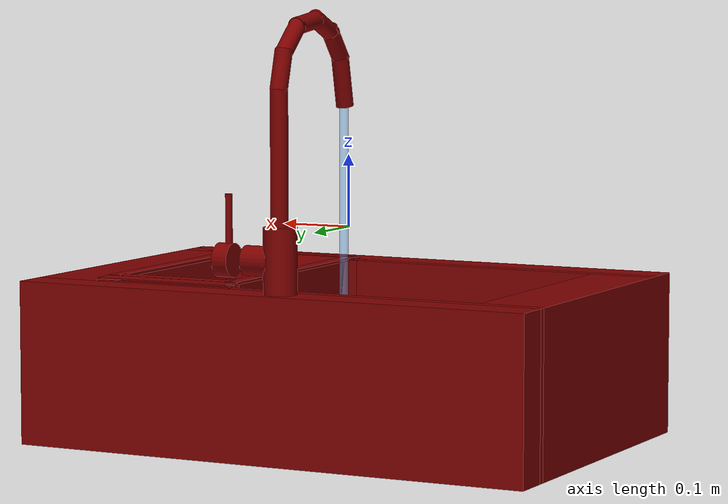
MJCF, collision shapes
<?xml version='1.0' encoding='UTF-8'?>
<mujoco model="model">
  <option timestep="0.002" gravity="0.0 0.0 -9.81"/>
  <compiler angle="radian"/>
  <asset>
    <mesh file="visuals/handle.obj" name="handle_vis"/>
    <mesh file="visuals/Body001.obj" name="Body001_vis"/>
    <mesh file="visuals/Container001.obj" name="Container001_vis"/>
    <mesh file="visuals/spout.obj" name="spout_vis"/>
    <texture file="visuals/T_BC001.png" name="Body001_material" type="2d"/>
    <material name="Body001_material" rgba="1 1 1 1.0" texture="Body001_material" shininess="0.1" specular="0.9"/>
    <texture file="visuals/T_BC001.png" name="handle_material" type="2d"/>
    <material name="handle_material" rgba="1 1 1 1.0" texture="handle_material" shininess="0.1" specular="0.9"/>
    <texture file="visuals/T_BC001.png" name="Container001_material" type="2d"/>
    <material name="Container001_material" rgba="1 1 1 1.0" texture="Container001_material" shininess="0.1" specular="0.9"/>
    <texture file="visuals/T_BC001.png" name="spout_material" type="2d"/>
    <material name="spout_material" rgba="1 1 1 1.0" texture="spout_material" shininess="0.1" specular="0.9"/>
  </asset>
  <default>
    <default class="visual">
      <geom conaffinity="0" contype="0" group="1" type="mesh"/>
    </default>
    <default class="collision">
      <geom group="0" rgba="0.5 0 0 0.5" solimp="0.998 0.998 0.001" solref="0.001 2"/>
    </default>
    <default class="spawn">
      <geom group="0" rgba="1 1 1 0.5" contype="0" conaffinity="0"/>
      <site group="0" rgba="1 1 1 0.5"/>
    </default>
    <default class="region">
      <geom group="1" conaffinity="0" contype="0" rgba="0 1 0 0"/>
    </default>
  </default>
  <worldbody>
    <body>
      <body name="object">
        <geom mesh="Body001_vis" type="mesh" solimp="0.998 0.998 0.001" solref="0.001 1" friction="0.95 0.3 0.1" class="visual" material="Body001_material"/>
        <geom class="collision" type="box" pos="-0.33033314 -0.03073106 -0.18203157" size="0.04538169503211975 0.2187015414237976 0.11276034265756607" quat="1.0 0.0 0.0 0.0"/>
        <geom class="collision" type="box" pos="-0.00000001 -0.22260673 -0.18203154" size="0.375713586807251 0.026827149093151093 0.11276036500930786" quat="1.0 0.0 0.0 0.0"/>
        <geom class="collision" type="box" pos="0.33197743 -0.01938420 -0.18203155" size="0.04373740777373314 0.23004864156246185 0.11276038736104965" quat="1.0 0.0 0.0 0.0"/>
        <geom class="collision" type="box" pos="-0.14741498 0.19010052 -0.18203143" size="0.22829879820346832 0.008557581342756748 0.11276043951511383" quat="1.0 0.0 0.0 0.0"/>
        <geom class="collision" type="box" pos="-0.14692110 -0.19321556 -0.18203152" size="0.22879284620285034 0.008557593449950218 0.1127605140209198" quat="1.0 0.0 0.0 0.0"/>
        <geom class="collision" type="box" pos="0.18044676 0.19147414 -0.18232904" size="0.10596142709255219 0.009982990100979805 0.11246292293071747" quat="1.0 0.0 0.0 0.0"/>
        <geom class="collision" type="box" pos="0.18649410 -0.19420634 -0.18203154" size="0.1120089590549469 0.008966122753918171 0.11276060342788696" quat="1.0 0.0 0.0 0.0"/>
        <geom class="collision" type="box" pos="-0.00000001 -0.00019749 -0.27024726" size="0.3757142722606659 0.1834442913532257 0.02454526536166668" quat="1.0 0.0 0.0 0.0"/>
        <geom class="collision" type="cylinder" pos="0.01843523 0.21879329 -0.02663432" size="0.020228685811161995 0.020443851128220558" quat="0.7071068286895752 1.2101618374060763e-08 0.7071067690849304 -1.2101617485882343e-08"/>
        <geom class="collision" type="cylinder" pos="-0.01212471 0.21897301 -0.02592911" size="0.022797370329499245 0.045382849872112274" quat="1.0 0.0 0.0 0.0"/>
        <geom class="collision" type="box" pos="-0.00000001 0.22344549 -0.18203149" size="0.3757144510746002 0.0259883813560009 0.1127607449889183" quat="1.0 0.0 0.0 0.0"/>
        <geom class="collision" type="box" pos="0.00210933 -0.18545331 -0.22251361" size="0.36479583382606506 0.008557697758078575 0.04323146864771843" quat="0.9932255744934082 0.11620211601257324 -3.3462691708326277e-17 -1.1685481251863116e-18"/>
        <geom class="collision" type="box" pos="0.27490819 0.00378976 -0.21471907" size="0.20199944078922272 0.008557695895433426 0.04323146492242813" quat="0.69902104139328 0.10662775486707687 0.10662778466939926 0.6990212202072144"/>
        <body name="handle">
          <joint axis="1.0 0.0 0.0" pos="0.06479135 0.21923083 -0.02750173" limited="true" name="handle_temp_joint" type="hinge" range="-0.7853981633974483 0.7853981633974483" damping="0.5" frictionloss="1" armature="2"/>
          <joint axis="0.0 1.0 0.0" pos="0.06479135 0.21923083 -0.02750173" limited="true" name="handle_joint" type="hinge" range="0 0.5" damping="0.5" frictionloss="1" armature="2"/>
          <geom mesh="handle_vis" type="mesh" solimp="0.998 0.998 0.001" solref="0.001 1" friction="0.95 0.3 0.1" class="visual" material="handle_material"/>
          <geom class="collision" type="cylinder" pos="0.06841291 0.21881914 -0.02743400" size="0.02281017042696476 0.010983329266309738" quat="0.7071068286895752 -0.0 0.7071067690849304 0.0"/>
          <geom name="handle_main" class="collision" type="cylinder" pos="0.06494518 0.21913177 0.02755849" size="0.004913790617138147 0.03293713927268982" quat="1.0 0.0 0.0 0.0"/>
        </body>
        <body name="Container001">
          <joint axis="0.0 0.0 1.0" pos="0.18269193 0.00158033 -0.10476265" limited="true" name="Container001_joint" range="0.0 0.1" type="slide" damping="1" frictionloss="1" armature=".01" stiffness="0.05"/>
          <geom mesh="Container001_vis" type="mesh" solimp="0.998 0.998 0.001" solref="0.001 1" friction="0.95 0.3 0.1" class="visual" material="Container001_material"/>
          <geom class="collision" type="box" pos="0.17930797 0.15847993 -0.10158688" size="0.08510932326316833 0.005809545051306486 0.03817487508058548" quat="0.04934852570295334 0.9987816214561462 -2.2177407054261217e-16 -7.894152648962042e-26"/>
          <geom class="collision" type="box" pos="0.09633640 -0.00895250 -0.10384757" size="0.15226206183433533 0.002230982296168804 0.038181714713573456" quat="0.014585187658667564 0.7069562673568726 0.7069564461708069 0.014585212804377079"/>
          <geom class="collision" type="box" pos="0.27124405 -0.00817993 -0.10481862" size="0.15285062789916992 0.0019349642097949982 0.038318976759910583" quat="0.027257831767201424 0.7065810561180115 -0.7065814137458801 -0.027257852256298065"/>
          <geom class="collision" type="box" pos="0.18310186 0.18146019 -0.06548583" size="0.10112003237009048 0.01446457114070654 0.0009946709033101797" quat="0.9999801516532898 -0.0063008214347064495 -1.3990645435459048e-18 -8.192812059671773e-25"/>
          <geom class="collision" type="box" pos="0.18387479 -0.17512453 -0.10324496" size="0.08209159970283508 0.0028013784904032946 0.03832589462399483" quat="0.08811910450458527 -0.9961099624633789 -2.2203252147064313e-16 -1.7234043364746315e-17"/>
          <geom class="collision" type="box" pos="0.18230173 -0.00654619 -0.14102266" size="0.08560532331466675 0.16589605808258057 0.003404776332899928" quat="1.0 0.0 0.0 0.0"/>
          <geom class="collision" type="box" pos="0.18265931 -0.18769257 -0.06630756" size="0.10111471265554428 0.007741409819573164 0.0017976694507524371" quat="1.0 0.0 0.0 0.0"/>
          <geom class="collision" type="box" pos="0.09148815 -0.00599018 -0.06544333" size="0.009462566114962101 0.17565225064754486 0.0017827051924541593" quat="1.0 0.0 0.0 0.0"/>
          <geom class="collision" type="box" pos="0.27447024 -0.00617371 -0.06582341" size="0.009462566114962101 0.1756560355424881 0.002278569620102644" quat="1.0 0.0 0.0 0.0"/>
        </body>
        <body name="spout">
          <joint axis="0.0 0.0 1.0" pos="-0.01111200 0.21855922 0.15633931" limited="true" name="spout_joint" range="-0.7853981633974483 0.7853981633974483" type="hinge" damping="10"/>
          <site type="cylinder" rgba="0.5 0.75 1 0.5" size="0.006065879482775927 0.216606006026268" pos="-0.01077057 0.03488784 -0.03946172" name="water"/>
          <geom mesh="spout_vis" type="mesh" solimp="0.998 0.998 0.001" solref="0.001 1" friction="0.95 0.3 0.1" class="visual" material="spout_material"/>
          <geom class="collision" type="cylinder" pos="-0.01093094 0.21909758 0.11077619" size="0.011920161545276642 0.09080865979194641" quat="1.0 0.0 0.0 0.0" name="spout_main"/>
          <geom class="collision" type="cylinder" pos="-0.01093094 0.21294346 0.22501730" size="0.011920161545276642 0.02771236188709736" quat="0.9908534288406372 0.13494248688220978 5.597813108299096e-17 -5.141014360981385e-18"/>
          <geom class="collision" type="cylinder" pos="-0.01093094 0.18697892 0.26433777" size="0.011920161545276642 0.02771236188709736" quat="0.9126067757606506 0.4088384807109833 8.829445634143715e-17 1.095444797781019e-18"/>
          <geom class="collision" type="cylinder" pos="-0.01093094 0.14426059 0.28428750" size="0.011920161545276642 0.02771236188709736" quat="0.749485194683075 0.6620211005210876 1.4844748708999145e-16 -1.2915069722786706e-18"/>
          <geom class="collision" type="cylinder" pos="-0.01093094 0.09543393 0.27955948" size="0.011920161545276642 0.027712363749742508" quat="0.5441926121711731 0.8389602899551392 1.7793484803606138e-16 1.1991887148726233e-17"/>
          <geom class="collision" type="cylinder" pos="-0.01093094 0.06120956 0.25418990" size="0.011920161545276642 0.02771236188709736" quat="0.9412050843238831 -0.33783581852912903 6.469056639466089e-17 -4.214016970556522e-16"/>
          <geom class="collision" type="cylinder" pos="-0.01093094 0.03929905 0.20224209" size="0.011920161545276642 0.03456389904022217" quat="0.9946037530899048 -0.10374680906534195 -2.303643577475876e-17 -1.6915156271088787e-23"/>
        </body>
        <geom class="region" name="reg_basin" type="box" pos="-0.10145215499999999 0.004719755000000006 -0.15551136999999998" size="0.179042665 0.17177500499999998 0.08551029"/>
        <geom class="region" name="reg_main" type="box" pos="-1.4999999992104662e-08 -2.500000000071889e-08 -0.18203149000000002" size="0.37671501500000004 0.250434025 0.11376102"/>
      </body>
    </body>
  </worldbody>
  <actuator>
    <motor name="handle_joint_actuator" joint="handle_joint" gear="10"/>
    <motor name="handle_temp_joint_actuator" joint="handle_temp_joint" gear="10"/>
    <motor name="Container001_joint_actuator" joint="Container001_joint" gear="10"/>
    <motor name="spout_joint_actuator" joint="spout_joint" gear="10"/>
  </actuator>
</mujoco>
